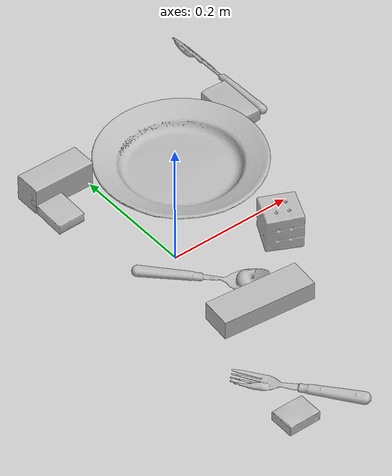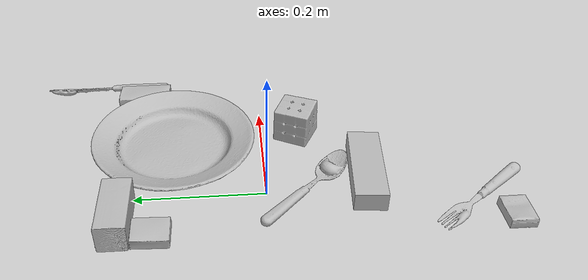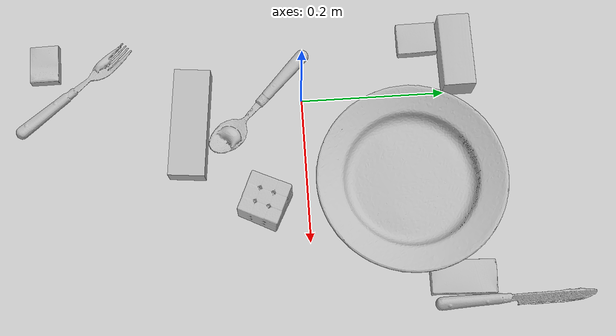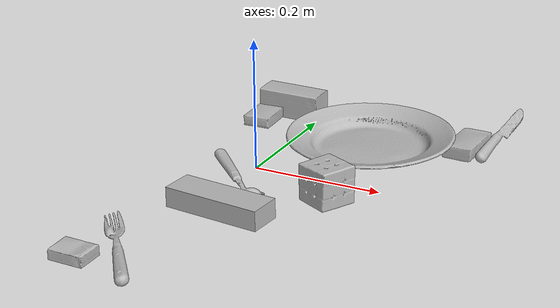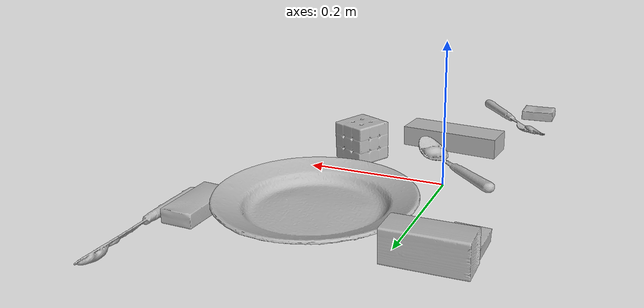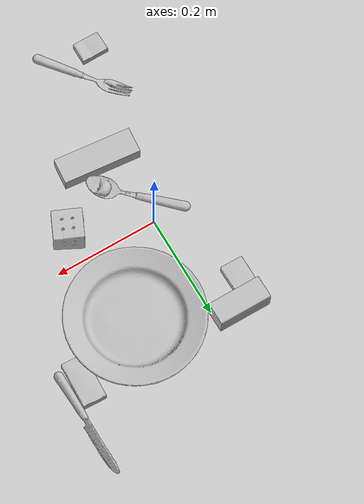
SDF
<sdf version="1.4">
  <world name="default">
    <light name="light1" type="point">
      <pose>0 0 1 0 0 0</pose>
      <diffuse>3 3 3 1</diffuse>
      <specular>3 3 3 1</specular>
    </light>
    <light name="light2" type="point">
      <pose>0 0.5 2 0 0 0</pose>
      <diffuse>1 1 1 1</diffuse>
      <specular>1 1 1 1</specular>
    </light>
    <light name="light3" type="point">
      <pose>0 0.5 2 0 0 0</pose>
      <diffuse>3 3 3 1</diffuse>
      <specular>3 3 3 1</specular>
    </light>
    <scene>
      <ambient>0.7 0.7 0.7</ambient>
    </scene>
    <model name="box11">
      <link name="link_box11">
        <collision name="default">
          <geometry>
            <mesh>
              <uri>model://cracker_box/collision_meshes/collision.obj</uri>
              <scale>0.25 0.25 0.25</scale>
            </mesh>
          </geometry>
          <surface>
            <friction>
              <ode>
                <mu>0.5</mu>
                <mu2>0.5</mu2>
              </ode>
            </friction>
          <contact>
        <ode>
            <max_vel>0</max_vel>
            <min_depth>0.0001</min_depth>
            <kp>1e8</kp>
        </ode>
    </contact></surface>
        </collision>
        <visual name="default">
          <geometry>
            <mesh>
              <uri>model://cracker_box/visual_meshes/visual.dae</uri>
              <scale>0.25 0.25 0.25</scale>
            </mesh>
          </geometry>
        </visual>
        <inertial>
          <mass>0.022244147956371307</mass>
          <pose>0.00023660442093387246 6.358561950037256e-05 -0.00042573834070935845 -0.00031620774024180285 -0.011106489600345375 0.0025467943041161943</pose>
          <inertia>
            <ixx>3.5361988e-06</ixx>
            <iyy>5.838959e-06</iyy>
            <izz>8.33273e-06</izz>
            <ixy>0</ixy>
            <ixz>0</ixz>
            <iyz>0</iyz>
          </inertia>
        </inertial>
      </link>
      <pose>-0.07302285730838776 -0.35635048151016235 0.009096023626625538 -0.014050598718220035 -0.005016618099664629 -3.140920145455891</pose>
    </model>
    <model name="box12">
      <link name="link_box12">
        <collision name="default">
          <geometry>
            <mesh>
              <uri>model://wood_block/collision_meshes/collision.obj</uri>
              <scale>0.5 0.5 0.5</scale>
            </mesh>
          </geometry>
          <surface>
            <friction>
              <ode>
                <mu>0.5</mu>
                <mu2>0.5</mu2>
              </ode>
            </friction>
          <contact>
        <ode>
            <max_vel>0</max_vel>
            <min_depth>0.0001</min_depth>
            <kp>1e8</kp>
        </ode>
    </contact></surface>
        </collision>
        <visual name="default">
          <geometry>
            <mesh>
              <uri>model://wood_block/visual_meshes/visual.dae</uri>
              <scale>0.5 0.5 0.5</scale>
            </mesh>
          </geometry>
        </visual>
        <inertial>
          <mass>0.19826212525367737</mass>
          <pose>-2.9066577553749084e-06 -0.00028540476341731846 0.00013204291462898254 -0.05221087153268513 -0.0051926957009938435 -0.006861378574469354</pose>
          <inertia>
            <ixx>6.632619e-05</ixx>
            <iyy>0.00020952444</iyy>
            <izz>0.0002087407</izz>
            <ixy>0</ixy>
            <ixz>0</ixz>
            <iyz>0</iyz>
          </inertia>
        </inertial>
      </link>
      <pose>-0.04836665838956833 0.21761368215084076 0.022527487948536873 -0.015849154772555694 -0.00040210044292062153 -3.13948042596813</pose>
    </model>
    <model name="box13">
      <link name="link_box13">
        <collision name="default">
          <geometry>
            <mesh>
              <uri>model://pudding_box/collision_meshes/collision.obj</uri>
              <scale>0.5 0.5 0.5</scale>
            </mesh>
          </geometry>
          <surface>
            <friction>
              <ode>
                <mu>0.5</mu>
                <mu2>0.5</mu2>
              </ode>
            </friction>
          <contact>
        <ode>
            <max_vel>0</max_vel>
            <min_depth>0.0001</min_depth>
            <kp>1e8</kp>
        </ode>
    </contact></surface>
        </collision>
        <visual name="default">
          <geometry>
            <mesh>
              <uri>model://pudding_box/visual_meshes/visual.dae</uri>
              <scale>0.5 0.5 0.5</scale>
            </mesh>
          </geometry>
        </visual>
        <inertial>
          <mass>0.049741584807634354</mass>
          <pose>0.00024474109522998333 0.0004033942532259971 -0.0002594413817860186 0.005213101800084814 -0.006603799174386178 0.020079821432586128</pose>
          <inertia>
            <ixx>1.4057575e-05</ixx>
            <iyy>9.458037e-06</iyy>
            <izz>2.0759684e-05</izz>
            <ixy>0</ixy>
            <ixz>0</ixz>
            <iyz>0</iyz>
          </inertia>
        </inertial>
      </link>
      <pose>-0.07751723378896713 0.16741111874580383 0.009862903505563736 0.022348430022036205 -0.011391795133792472 -0.0024986023522492514</pose>
    </model>
    <model name="box21">
      <link name="link_box21">
        <collision name="default">
          <geometry>
            <mesh>
              <uri>model://rubiks_cube/collision_meshes/collision.obj</uri>
              <scale>1.0 1.0 1.0</scale>
            </mesh>
          </geometry>
          <surface>
            <friction>
              <ode>
                <mu>0.5</mu>
                <mu2>0.5</mu2>
              </ode>
            </friction>
          <contact>
        <ode>
            <max_vel>0</max_vel>
            <min_depth>0.0001</min_depth>
            <kp>1e8</kp>
        </ode>
    </contact></surface>
        </collision>
        <visual name="default">
          <geometry>
            <mesh>
              <uri>model://rubiks_cube/visual_meshes/visual.dae</uri>
              <scale>1.0 1.0 1.0</scale>
            </mesh>
          </geometry>
        </visual>
        <inertial>
          <mass>0.14589080214500427</mass>
          <pose>2.6721043468569405e-05 5.256966323941015e-05 -7.264316082000732e-06 -0.054672881442690106 -0.09814117646273159 -0.034455034483302956</pose>
          <inertia>
            <ixx>8.061447e-05</ixx>
            <iyy>8.023852e-05</iyy>
            <izz>8.128248e-05</izz>
            <ixy>0</ixy>
            <ixz>0</ixz>
            <iyz>0</iyz>
          </inertia>
        </inertial>
      </link>
      <pose>0.14494828879833221 -0.057781070470809937 0.028678959235548973 -3.5110961704936864e-06 -9.905167553037257e-07 2.7060944407825995</pose>
    </model>
    <model name="box22">
      <link name="link_box22">
        <collision name="default">
          <geometry>
            <mesh>
              <uri>model://jenga/collision_meshes/collision.obj</uri>
              <scale>1.0 1.0 1.0</scale>
            </mesh>
          </geometry>
          <surface>
            <friction>
              <ode>
                <mu>0.5</mu>
                <mu2>0.5</mu2>
              </ode>
            </friction>
          <contact>
        <ode>
            <max_vel>0</max_vel>
            <min_depth>0.0001</min_depth>
            <kp>1e8</kp>
        </ode>
    </contact></surface>
        </collision>
        <visual name="default">
          <geometry>
            <mesh>
              <uri>model://jenga/visual_meshes/visual.dae</uri>
              <scale>1.0 1.0 1.0</scale>
            </mesh>
          </geometry>
        </visual>
        <inertial>
          <mass>0.13963866233825684</mass>
          <pose>-2.502855807051674e-07 -0.00010250010382151231 -4.092339804628864e-05 0.0 -7.342154049184251e-07 0.0</pose>
          <inertia>
            <ixx>3.8641407e-05</ixx>
            <iyy>0.00026183313</iyy>
            <izz>0.00027952914</izz>
            <ixy>0</ixy>
            <ixz>0</ixz>
            <iyz>0</iyz>
          </inertia>
        </inertial>
      </link>
      <pose>0.02837347611784935 -0.15522855520248413 0.01499999687075615 1.1625633687344519e-08 5.973982093716825e-10 -0.09392205732868984</pose>
    </model>
    <model name="box23">
      <link name="link_box23">
        <collision name="default">
          <geometry>
            <mesh>
              <uri>model://sugar_box/collision_meshes/collision.obj</uri>
              <scale>0.5 0.5 0.5</scale>
            </mesh>
          </geometry>
          <surface>
            <friction>
              <ode>
                <mu>0.5</mu>
                <mu2>0.5</mu2>
              </ode>
            </friction>
          <contact>
        <ode>
            <max_vel>0</max_vel>
            <min_depth>0.0001</min_depth>
            <kp>1e8</kp>
        </ode>
    </contact></surface>
        </collision>
        <visual name="default">
          <geometry>
            <mesh>
              <uri>model://sugar_box/visual_meshes/visual.dae</uri>
              <scale>0.5 0.5 0.5</scale>
            </mesh>
          </geometry>
        </visual>
        <inertial>
          <mass>0.09426560252904892</mass>
          <pose>0.0005171863595023751 1.924554817378521e-05 -0.00018182402709499002 -0.00040462606744182556 0.0010506635219056535 0.0026153790218759383</pose>
          <inertia>
            <ixx>1.963546e-05</ixx>
            <iyy>6.346583e-05</iyy>
            <izz>7.597618e-05</izz>
            <ixy>0</ixy>
            <ixz>0</ixz>
            <iyz>0</iyz>
          </inertia>
        </inertial>
      </link>
      <pose>0.26070526242256165 0.19901134073734283 0.01140547450631857 0.0022899642228706592 -0.023374021093584618 -1.6149847948169962</pose>
    </model>
    <model name="plate1">
      <link name="link_plate1">
        <collision name="default">
          <geometry>
            <mesh>
              <uri>model://plate/collision_meshes/collision.obj</uri>
              <scale>1.0 1.0 1.0</scale>
            </mesh>
          </geometry>
          <surface>
            <friction>
              <ode>
                <mu>0.5</mu>
                <mu2>0.5</mu2>
              </ode>
            </friction>
          <contact>
        <ode>
            <max_vel>0</max_vel>
            <min_depth>0.0001</min_depth>
            <kp>1e8</kp>
        </ode>
    </contact></surface>
        </collision>
        <visual name="default">
          <geometry>
            <mesh>
              <uri>model://plate/visual_meshes/visual.dae</uri>
              <scale>1.0 1.0 1.0</scale>
            </mesh>
          </geometry>
        </visual>
        <inertial>
          <mass>0.11197491735219955</mass>
          <pose>-0.0006044617621228099 0.00027825823053717613 -0.001056199544109404 0.00221882520869589 -0.003225452482750881 0.45259630068278056</pose>
          <inertia>
            <ixx>0.0005238209</ixx>
            <iyy>0.00051881076</iyy>
            <izz>0.0010245154</izz>
            <ixy>0</ixy>
            <ixz>0</ixz>
            <iyz>0</iyz>
          </inertia>
        </inertial>
      </link>
      <pose>0.12283352017402649 0.1428932100534439 0.013968469575047493 0.0007559037794608385 -0.003529976765257335 -0.10193663216535044</pose>
    </model>
    <model name="silverware1">
      <link name="link_silverware1">
        <collision name="default">
          <geometry>
            <mesh>
              <uri>model://knife/collision_meshes/collision.obj</uri>
              <scale>1.0 1.0 1.0</scale>
            </mesh>
          </geometry>
          <surface>
            <friction>
              <ode>
                <mu>0.5</mu>
                <mu2>0.5</mu2>
              </ode>
            </friction>
          <contact>
        <ode>
            <max_vel>0</max_vel>
            <min_depth>0.0001</min_depth>
            <kp>1e8</kp>
        </ode>
    </contact></surface>
        </collision>
        <visual name="default">
          <geometry>
            <mesh>
              <uri>model://knife/visual_meshes/visual.dae</uri>
              <scale>1.0 1.0 1.0</scale>
            </mesh>
          </geometry>
        </visual>
        <inertial>
          <mass>0.01465720683336258</mass>
          <pose>-0.023785248398780823 0.0015275123296305537 5.062019408796914e-05 0.07304601322977639 0.017248415474028462 -0.007409829977624996</pose>
          <inertia>
            <ixx>4.1603096e-07</ixx>
            <iyy>5.6310615e-05</iyy>
            <izz>5.6444613e-05</izz>
            <ixy>0</ixy>
            <ixz>0</ixz>
            <iyz>0</iyz>
          </inertia>
        </inertial>
      </link>
      <pose>0.2938450574874878 0.26645150780677795 0.008470949716866016 0.7079919430141922 -0.011452938774712176 1.576391870274835</pose>
    </model>
    <model name="silverware2">
      <link name="link_silverware2">
        <collision name="default">
          <geometry>
            <mesh>
              <uri>model://spoon/collision_meshes/collision.obj</uri>
              <scale>1.0 1.0 1.0</scale>
            </mesh>
          </geometry>
          <surface>
            <friction>
              <ode>
                <mu>0.5</mu>
                <mu2>0.5</mu2>
              </ode>
            </friction>
          <contact>
        <ode>
            <max_vel>0</max_vel>
            <min_depth>0.0001</min_depth>
            <kp>1e8</kp>
        </ode>
    </contact></surface>
        </collision>
        <visual name="default">
          <geometry>
            <mesh>
              <uri>model://spoon/visual_meshes/visual.dae</uri>
              <scale>1.0 1.0 1.0</scale>
            </mesh>
          </geometry>
        </visual>
        <inertial>
          <mass>0.03463635593652725</mass>
          <pose>-0.005526320077478886 -0.0016034176805987954 -0.0007271658396348357 0.035218626746325574 -0.03906584480927328 0.006150611928774215</pose>
          <inertia>
            <ixx>1.9265303e-06</ixx>
            <iyy>0.0001317902</iyy>
            <izz>0.00013274024</izz>
            <ixy>0</ixy>
            <ixz>0</ixz>
            <iyz>0</iyz>
          </inertia>
        </inertial>
      </link>
      <pose>0.0014946702867746353 -0.056830041110515594 0.00838525965809822 0.006731645276026065 0.026892986988608328 -0.7798104944193309</pose>
    </model>
    <model name="silverware3">
      <link name="link_silverware3">
        <collision name="default">
          <geometry>
            <mesh>
              <uri>model://fork/collision_meshes/collision.obj</uri>
              <scale>1.0 1.0 1.0</scale>
            </mesh>
          </geometry>
          <surface>
            <friction>
              <ode>
                <mu>0.5</mu>
                <mu2>0.5</mu2>
              </ode>
            </friction>
          <contact>
        <ode>
            <max_vel>0</max_vel>
            <min_depth>0.0001</min_depth>
            <kp>1e8</kp>
        </ode>
    </contact></surface>
        </collision>
        <visual name="default">
          <geometry>
            <mesh>
              <uri>model://fork/visual_meshes/visual.dae</uri>
              <scale>1.0 1.0 1.0</scale>
            </mesh>
          </geometry>
        </visual>
        <inertial>
          <mass>0.019285527989268303</mass>
          <pose>-0.029570043087005615 0.0004658823017962277 0.0003218861238565296 -0.013551447953525298 -0.010977835959949084 0.014453901308334693</pose>
          <inertia>
            <ixx>6.760669e-07</ixx>
            <iyy>5.0348972e-05</iyy>
            <izz>5.065136e-05</izz>
            <ixy>0</ixy>
            <ixz>0</ixz>
            <iyz>0</iyz>
          </inertia>
        </inertial>
      </link>
      <pose>-0.031961407512426376 -0.3170372247695923 0.005704361479729414 -0.18054702998692373 0.024954852515824837 2.2279203705745187</pose>
    </model>
  <physics type="ode">
      <max_contacts>50</max_contacts>
      <ode>
        <solver>
          <type>quick</type>
          <iters>75</iters>
        </solver>
        <constraints>
          <contact_max_correcting_vel>0</contact_max_correcting_vel>
          <contact_surface_layer>0</contact_surface_layer>
        </constraints>
      </ode>
    </physics></world>
</sdf>
